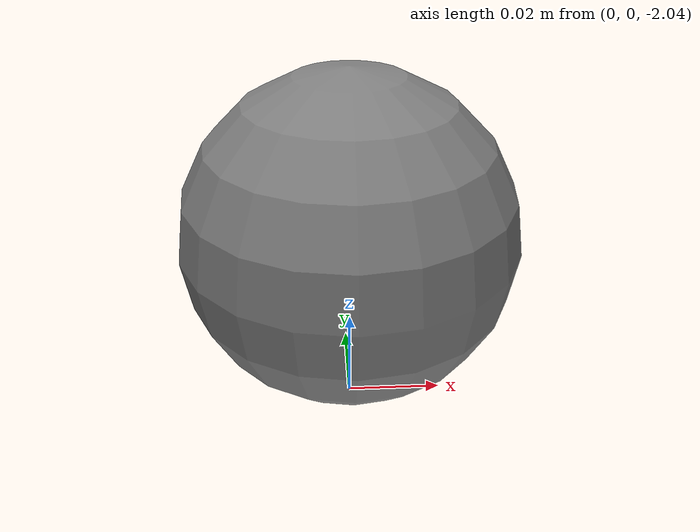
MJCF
<mujoco model="h2_untrained_actuated">
  <compiler angle="radian" meshdir="assets/"/>

  <option integrator="implicitfast" cone="elliptic"/>

  <size nkey="1"/>

  <default>
    <default class="h2">
      <site group="5" rgba="1 0 0 1"/>
      <default class="visual">
        <geom type="mesh" contype="0" conaffinity="0" group="2" density="0"/>
      </default>
      <default class="collision">
        <geom type="capsule" condim="6" group="3" priority="1"/>
        <default class="foot_capsule">
          <geom size="0.01 0 0"/>
        </default>
      </default>
    </default>
  </default>

  <worldbody>
    <geom name="floor" size="30 30 0.1" type="plane" friction="0.6" rgba="0.15 0.18 0.22 1"/>
    <body name="pelvis" childclass="h2" pos="0 0 1.03">
      <inertial pos="0.00046244 -4.214e-05 -0.0147344" quat="0.707546 0.706201 -0.0235095 -0.0102787" mass="7.60468" diaginertia="0.0355137 0.0275324 0.0228779"/>
      <joint name="floating_base_joint" type="free"/>
      <geom name="pelvis_collision" class="collision" size="0.08" type="sphere"/>
      <site name="imu" pos="0 0 0" size="0.01"/>
      <body name="left_hip_pitch_link" pos="0 0.0819279 -0.043723" quat="0.965926 -0.25882 0 0">
        <inertial pos="0.00300595 0.0593147 -0.0170915" quat="0.899485 0.435934 -0.0222136 -0.0198741" mass="2.79753" diaginertia="0.00510297 0.00410085 0.0034593"/>
        <joint name="left_hip_pitch_joint" pos="0 0 0" axis="0 1 0" range="-2.4526 2.77542" armature="0.01" damping="0.05" frictionloss="0.2"/>
        <body name="left_hip_roll_link" pos="0.018422 0.0635 -0.022095" quat="0.965926 0.25882 0 0">
          <inertial pos="-0.0302619 -0.0046893 -0.0444985" quat="-0.0935812 0.633472 -0.0477755 0.766598" mass="0.627146" diaginertia="0.00200252 0.00167509 0.00128023"/>
          <joint name="left_hip_roll_joint" pos="0 0 0" axis="1 0 0" range="-0.467441 2.16886" armature="0.01" damping="0.05" frictionloss="0.2"/>
          <geom name="left_hip_collision" class="collision" size="0.06 0.0125" pos="-0.013 0 -0.0125"/>
          <body name="left_hip_yaw_link" pos="-0.0047433 -0.0057328 -0.075875">
            <inertial pos="0.00069408 -0.0108659 -0.113015" quat="0.621993 -0.0405952 0.0198637 0.781717" mass="7.08752" diaginertia="0.0514012 0.050596 0.0130067"/>
            <joint name="left_hip_yaw_joint" pos="0 0 0" axis="0 0 1" range="-2.827 2.827" armature="0.01" damping="0.05" frictionloss="0.2"/>
            <geom name="left_thigh_collision" class="collision" size="0.05 0.100281" pos="0.0075 0 -0.15" quat="0.9993 0 -0.0374212 0"/>
            <body name="left_knee_link" pos="-0.010386 -0.0042181 -0.31742">
              <inertial pos="0.00461331 0 -0.167155" quat="0.689662 0.00325283 0.00290593 0.724118" mass="3.5534" diaginertia="0.0512388 0.0510884 0.00333998"/>
              <joint name="left_knee_joint" pos="0 0 0" axis="0 1 0" range="-0.08725 2.53025" armature="0.01" damping="0.05" frictionloss="0.2"/>
              <geom name="left_shin_collision" class="collision" size="0.03 0.0764853" pos="0.015 0 -0.125" quat="0.995133 0 0.0985376 0"/>
              <geom name="left_linkage_brace_collision" class="collision" size="0.02 0.0855862" pos="0.01 0 -0.365" quat="0.998286 0 -0.0585209 0"/>
              <body name="left_ankle_roll_link" pos="0.018383 0 -0.49662">
                <inertial pos="-0.0174063 6.424e-05 -0.0002146" quat="0.499157 0.502573 -0.497809 0.500449" mass="0.123182" diaginertia="4.00501e-05 3.43207e-05 1.44993e-05"/>
                <joint name="left_ankle_roll_joint" pos="0 0 0" axis="1 0 0" range="-0.349066 0.296706" armature="0.01" damping="0.05" frictionloss="0.2"/>
                <body name="left_ankle_pitch_link" pos="0 -0.0368 0">
                  <inertial pos="0.032059 0.0370053 -0.0288282" quat="6.19452e-05 0.72345 -3.0004e-05 0.690377" mass="0.844967" diaginertia="0.00438317 0.00410964 0.000599978"/>
                  <joint name="left_ankle_pitch_joint" pos="0 0 0" axis="0 1 0" range="-1.13446 0.610865" armature="0.01" damping="0.05" frictionloss="0.2"/>
                  <geom name="left_foot1_collision" class="foot_capsule" size="0.01 0.025" pos="0.105 0.008 -0.038" quat="0.707107 0 0.707107 0"/>
                  <geom name="left_foot2_collision" class="foot_capsule" size="0.01 0.1025" pos="0.0375 0.018 -0.038" quat="0.707107 0 -0.707107 0"/>
                  <geom name="left_foot3_collision" class="foot_capsule" size="0.01 0.1065" pos="0.0385 0.027 -0.038" quat="0.707107 0 -0.707107 0"/>
                  <geom name="left_foot4_collision" class="foot_capsule" size="0.01 0.11" pos="0.04 0.037 -0.038" quat="0.707107 0 -0.707107 0"/>
                  <geom name="left_foot5_collision" class="foot_capsule" size="0.01 0.1065" pos="0.0385 0.047 -0.038" quat="0.707107 0 -0.707107 0"/>
                  <geom name="left_foot6_collision" class="foot_capsule" size="0.01 0.1025" pos="0.0375 0.055 -0.038" quat="0.707107 0 -0.707107 0"/>
                  <geom name="left_foot7_collision" class="foot_capsule" size="0.01 0.025" pos="0.105 0.065 -0.038" quat="0.707107 0 0.707107 0"/>
                  <site name="left_foot" pos="0.04 0.037 -0.048"/>
                </body>
              </body>
            </body>
          </body>
        </body>
      </body>
      <body name="right_hip_pitch_link" pos="0 -0.0803801 -0.046403" quat="0.965926 0.25882 0 0">
        <inertial pos="0.00300595 -0.0593147 -0.0170915" quat="0.435934 0.899485 0.0198741 0.0222136" mass="2.79753" diaginertia="0.00510297 0.00410085 0.0034593"/>
        <joint name="right_hip_pitch_joint" pos="0 0 0" axis="0 1 0" range="-2.4526 2.77542" armature="0.01" damping="0.05" frictionloss="0.2"/>
        <body name="right_hip_roll_link" pos="0.037774 -0.0635 -0.019" quat="0.965926 -0.25882 0 0">
          <inertial pos="-0.0302619 0.0046893 -0.0444985" quat="0.0935812 0.633472 0.0477755 0.766598" mass="0.627146" diaginertia="0.00200252 0.00167509 0.00128023"/>
          <joint name="right_hip_roll_joint" pos="0 0 0" axis="1 0 0" range="-2.16886 0.467441" armature="0.01" damping="0.05" frictionloss="0.2"/>
          <geom name="right_hip_collision" class="collision" size="0.06 0.0125" pos="-0.033 0 -0.0125"/>
          <body name="right_hip_yaw_link" pos="-0.024111 0.0057328 -0.075875">
            <inertial pos="0.00069408 0.0108659 -0.113015" quat="0.781717 0.0198637 -0.0405952 0.621993" mass="7.08752" diaginertia="0.0514012 0.050596 0.0130067"/>
            <joint name="right_hip_yaw_joint" pos="0 0 0" axis="0 0 1" range="-2.827 2.827" armature="0.01" damping="0.05" frictionloss="0.2"/>
            <geom name="right_thigh_collision" class="collision" size="0.05 0.100281" pos="0.0075 0 -0.15" quat="0.9993 0 -0.0374212 0"/>
            <body name="right_knee_link" pos="-0.010386 0.0042181 -0.31742">
              <inertial pos="0.00461331 0 -0.167155" quat="0.724118 0.00290593 0.00325283 0.689662" mass="3.5534" diaginertia="0.0512388 0.0510884 0.00333998"/>
              <joint name="right_knee_joint" pos="0 0 0" axis="0 1 0" range="-0.08725 2.53025" armature="0.01" damping="0.05" frictionloss="0.2"/>
              <geom name="right_shin_collision" class="collision" size="0.03 0.0764853" pos="0.015 0 -0.125" quat="0.995133 0 0.0985376 0"/>
              <geom name="right_linkage_brace_collision" class="collision" size="0.02 0.0855862" pos="0.01 0 -0.365" quat="0.998286 0 -0.0585209 0"/>
              <body name="right_ankle_roll_link" pos="0.018383 0 -0.49662">
                <inertial pos="-0.0174063 -6.424e-05 -0.0002146" quat="0.502573 0.499157 -0.500449 0.497809" mass="0.123182" diaginertia="4.00501e-05 3.43207e-05 1.44993e-05"/>
                <joint name="right_ankle_roll_joint" pos="0 0 0" axis="1 0 0" range="-0.296706 0.349066" armature="0.01" damping="0.05" frictionloss="0.2"/>
                <body name="right_ankle_pitch_link" pos="0 0.0373 0">
                  <inertial pos="0.032059 -0.0370053 -0.0288282" quat="-6.19452e-05 0.72345 3.0004e-05 0.690377" mass="0.844967" diaginertia="0.00438317 0.00410964 0.000599978"/>
                  <joint name="right_ankle_pitch_joint" pos="0 0 0" axis="0 1 0" range="-1.13446 0.610865" armature="0.01" damping="0.05" frictionloss="0.2"/>
                  <geom name="right_foot1_collision" class="foot_capsule" size="0.01 0.025" pos="0.105 -0.008 -0.038" quat="0.707107 0 0.707107 0"/>
                  <geom name="right_foot2_collision" class="foot_capsule" size="0.01 0.1025" pos="0.0375 -0.018 -0.038" quat="0.707107 0 -0.707107 0"/>
                  <geom name="right_foot3_collision" class="foot_capsule" size="0.01 0.1065" pos="0.0385 -0.027 -0.038" quat="0.707107 0 -0.707107 0"/>
                  <geom name="right_foot4_collision" class="foot_capsule" size="0.01 0.11" pos="0.04 -0.037 -0.038" quat="0.707107 0 -0.707107 0"/>
                  <geom name="right_foot5_collision" class="foot_capsule" size="0.01 0.1065" pos="0.0385 -0.047 -0.038" quat="0.707107 0 -0.707107 0"/>
                  <geom name="right_foot6_collision" class="foot_capsule" size="0.01 0.1025" pos="0.0375 -0.055 -0.038" quat="0.707107 0 -0.707107 0"/>
                  <geom name="right_foot7_collision" class="foot_capsule" size="0.01 0.025" pos="0.105 -0.065 -0.038" quat="0.707107 0 0.707107 0"/>
                  <site name="right_foot" pos="0.04 -0.037 -0.048"/>
                </body>
              </body>
            </body>
          </body>
        </body>
      </body>
      <body name="waist_yaw_link" pos="0 0.0015099 0.090537">
        <inertial pos="0.00626994 0 0.0169696" quat="0 0.717728 0 0.696323" mass="0.279762" diaginertia="0.000311422 0.0002473 0.000123348"/>
        <joint name="waist_yaw_joint" pos="0 0 0" axis="0 0 1" range="-1.7453 1.7453" armature="0.01" damping="0.05" frictionloss="0.2"/>
        <body name="waist_roll_link" pos="0 -0.0015099 0.0325">
          <inertial pos="0 0.00128474 0" quat="0 0.707107 0 0.707107" mass="0.0658504" diaginertia="1.58e-05 1.041e-05 8.09e-06"/>
          <joint name="waist_roll_joint" pos="0 0 0" axis="1 0 0" range="-0.5236 0.5236" armature="0.01" damping="0.05" frictionloss="0.2"/>
          <body name="torso_link">
            <inertial pos="0.0134247 0.0054719 0.210501" quat="0.999399 -0.0341887 0.00399831 0.00403179" mass="15.8703" diaginertia="0.273064 0.244383 0.0840858"/>
            <joint name="waist_pitch_joint" pos="0 0 0" axis="0 1 0" range="-0.43633 0.5236" armature="0.01" damping="0.05" frictionloss="0.2"/>
            <geom name="torso_collision" class="collision" size="0.09 0.09" pos="0 0 0.21" quat="0 1 0 0"/>
            <body name="head_pitch_link" pos="-0.00011475 0.020709 0.42181">
              <inertial pos="5.279e-08 -0.00035318 0.045125" quat="0.999996 -0.000955249 -0.00262397 -0.000580497" mass="1.82" diaginertia="0.00538697 0.00532442 0.00140982"/>
              <body name="head_yaw_link" pos="0 -0.0189 0.1325">
                <inertial pos="0.0219 0 0.0187" quat="0.667311 -0.227767 -0.231751 0.670156" mass="1.3" diaginertia="0.00535274 0.00472336 0.00378091"/>
                <geom name="head_collision" class="collision" size="0.065" pos="0.02 0 0.02" type="sphere"/>
              </body>
            </body>
            <body name="left_shoulder_pitch_link" pos="0.0019779 0.11553 0.35792" quat="0.990959 0.134164 0 0">
              <inertial pos="0.00296153 0.0520268 -0.025045" quat="0.955852 0.29138 -0.0379121 0.00288293" mass="1.06056" diaginertia="0.00122192 0.00110581 0.000458834"/>
              <joint name="left_shoulder_pitch_joint" pos="0 0 0" axis="0 1 0" range="-2.618 1.833" armature="0.01" damping="0.05" frictionloss="0.2"/>
              <body name="left_shoulder_roll_link" pos="-0.00082158 0.060413 -0.040043" quat="0.990959 -0.134164 0 0">
                <inertial pos="0 0.00415443 -0.0629422" quat="0.678366 0.110828 0.0778018 0.722138" mass="1.34511" diaginertia="0.00210225 0.00198513 0.00105666"/>
                <joint name="left_shoulder_roll_joint" pos="0 0 0" axis="1 0 0" range="-0.517 2.494" armature="0.01" damping="0.05" frictionloss="0.2"/>
                <body name="left_shoulder_yaw_link" pos="-0.0025946 0.0038061 -0.09623">
                  <inertial pos="0.00364187 0.0186515 -0.0558555" quat="0.995617 -0.0729116 -0.0584518 -0.00371547" mass="0.915717" diaginertia="0.00306267 0.00257349 0.00143042"/>
                  <joint name="left_shoulder_yaw_joint" pos="0 0 0" axis="0 0 1" range="-2.618 2.618" armature="0.01" damping="0.05" frictionloss="0.2"/>
                  <geom name="left_shoulder_yaw_collision" class="collision" size="0.035 0.075" pos="0 0 0.015" quat="0 1 0 0"/>
                  <body name="left_elbow_link" pos="0.015424 0.020635 -0.13364">
                    <inertial pos="0.0459969 -0.0283296 -0.00661325" quat="0.520177 0.507229 0.507638 0.463074" mass="1.69432" diaginertia="0.00548751 0.00533836 0.000695052"/>
                    <joint name="left_elbow_joint" pos="0 0 0" axis="0 1 0" range="-0.986 3.071" armature="0.01" damping="0.05" frictionloss="0.2"/>
                    <geom name="left_elbow_yaw_collision" class="collision" size="0.035 0.05" pos="0.05 -0.025 -0.01" quat="0.707107 0 -0.707107 0"/>
                    <body name="left_wrist_roll_link" pos="0.13119 -0.021207 -0.013343">
                      <inertial pos="0.0337195 0.00237482 0.00031544" quat="-0.242945 0.638599 0.286806 0.671499" mass="0.969837" diaginertia="0.000926999 0.000903832 0.000852829"/>
                      <joint name="left_wrist_roll_joint" pos="0 0 0" axis="1 0 0" range="-2.618 2.618" armature="0.01" damping="0.05" frictionloss="0.2"/>
                      <body name="left_wrist_pitch_link" pos="0.080589 3.0398e-05 -0.0013317">
                        <inertial pos="0.01821 0.0314035 0.0115687" quat="0.977699 -0.037912 -0.203807 0.033629" mass="0.946953" diaginertia="0.000918192 0.00082104 0.000648419"/>
                        <joint name="left_wrist_pitch_joint" pos="0 0 0" axis="0 1 0" range="-0.576 0.576" armature="0.01" damping="0.05" frictionloss="0.2"/>
                        <geom name="left_wrist_collision" class="collision" size="0.035 0.04" pos="0.01 0 0" quat="0.707107 0 -0.707107 0"/>
                        <body name="left_wrist_yaw_link" pos="0.028225 0.00048901 0.00058318">
                          <inertial pos="-0.0101173 0.00400457 -0.0173071" quat="0.554707 0.450933 0.585065 0.382961" mass="0.605752" diaginertia="0.000778685 0.00067164 0.000238076"/>
                          <joint name="left_wrist_yaw_joint" pos="0 0 0" axis="0 0 1" range="-1.22 1.22" armature="0.01" damping="0.05" frictionloss="0.2"/>
                          <geom name="left_hand_collision" class="collision" size="0.035 0.04" pos="0.14 -0.01 0" quat="0.707107 0 -0.707107 0" rgba="0.2 0.6 0.2 0.2"/>
                          <site name="left_palm" pos="0.08 0 0" size="0.01"/>
                        </body>
                      </body>
                    </body>
                  </body>
                </body>
              </body>
            </body>
            <body name="right_shoulder_pitch_link" pos="0.0019706 -0.11185 0.35789" quat="0.990959 -0.134164 0 0">
              <inertial pos="0.00296153 -0.0520268 -0.025045" quat="0.955852 -0.291379 -0.0379149 -0.00289698" mass="1.06056" diaginertia="0.00122192 0.00110581 0.000458835"/>
              <joint name="right_shoulder_pitch_joint" pos="0 0 0" axis="0 1 0" range="-2.618 1.833" armature="0.01" damping="0.05" frictionloss="0.2"/>
              <body name="right_shoulder_roll_link" pos="-0.00082577 -0.060403 -0.040059" quat="0.990959 0.134164 0 0">
                <inertial pos="0 -0.00415443 -0.0629422" quat="0.722138 0.0778018 0.110828 0.678366" mass="1.34511" diaginertia="0.00210225 0.00198513 0.00105666"/>
                <joint name="right_shoulder_roll_joint" pos="0 0 0" axis="1 0 0" range="-2.494 0.517" armature="0.01" damping="0.05" frictionloss="0.2"/>
                <body name="right_shoulder_yaw_link" pos="-0.0025949 -0.0037808 -0.096231">
                  <inertial pos="0.00364187 -0.0186515 -0.0558555" quat="0.995617 0.0729116 -0.0584518 0.00371547" mass="0.915717" diaginertia="0.00306267 0.00257349 0.00143042"/>
                  <joint name="right_shoulder_yaw_joint" pos="0 0 0" axis="0 0 1" range="-2.618 2.618" armature="0.01" damping="0.05" frictionloss="0.2"/>
                  <geom name="right_shoulder_yaw_collision" class="collision" size="0.035 0.075" pos="0 0 0.015" quat="0 1 0 0"/>
                  <body name="right_elbow_link" pos="0.015346 -0.020599 -0.13363">
                    <inertial pos="0.0459969 0.0283296 -0.00661325" quat="0.463074 0.507638 0.507229 0.520177" mass="1.69432" diaginertia="0.00548751 0.00533836 0.000695052"/>
                    <joint name="right_elbow_joint" pos="0 0 0" axis="0 1 0" range="-0.986 3.071" armature="0.01" damping="0.05" frictionloss="0.2"/>
                    <geom name="right_elbow_yaw_collision" class="collision" size="0.035 0.05" pos="0.05 0.025 -0.01" quat="0.707107 0 -0.707107 0"/>
                    <body name="right_wrist_roll_link" pos="0.13177 0.021197 -0.013782">
                      <inertial pos="0.0337195 -0.00237482 0.00031544" quat="0.242945 0.638599 -0.286806 0.671499" mass="0.969837" diaginertia="0.000926999 0.000903832 0.000852829"/>
                      <joint name="right_wrist_roll_joint" pos="0 0 0" axis="1 0 0" range="-2.618 2.618" armature="0.01" damping="0.05" frictionloss="0.2"/>
                      <body name="right_wrist_pitch_link" pos="0.076351 -0.00015864 0.0011464">
                        <inertial pos="0.01821 -0.0314035 0.0115687" quat="0.977699 0.037912 -0.203807 -0.033629" mass="0.946953" diaginertia="0.000918192 0.00082104 0.000648419"/>
                        <joint name="right_wrist_pitch_joint" pos="0 0 0" axis="0 1 0" range="-0.576 0.576" armature="0.01" damping="0.05" frictionloss="0.2"/>
                        <geom name="right_wrist_collision" class="collision" size="0.035 0.04" pos="0.01 0 0" quat="0.707107 0 -0.707107 0"/>
                        <body name="right_wrist_yaw_link" pos="0.028195 5.8414e-05 -0.0012184">
                          <inertial pos="-0.0101173 -0.00400457 -0.0173071" quat="0.382961 0.585065 0.450933 0.554707" mass="0.605752" diaginertia="0.000778685 0.00067164 0.000238076"/>
                          <joint name="right_wrist_yaw_joint" pos="0 0 0" axis="0 0 1" range="-1.22 1.22" armature="0.01" damping="0.05" frictionloss="0.2"/>
                          <geom name="right_hand_collision" class="collision" size="0.035 0.04" pos="0.14 0.01 0" quat="0.707107 0 -0.707107 0" rgba="0.2 0.6 0.2 0.2"/>
                          <site name="right_palm" pos="0.08 0 0" size="0.01"/>
                          <body name="tennis_racket">
                            <inertial pos="0.08 -0.004 0.28" mass="0.32" diaginertia="0.014 0.014 0.003"/>
                            <geom name="racket_head" size="0.12 0.005" pos="0.1025 -0.004 0.4" quat="0 0 -0.707107 0.707107" type="cylinder" contype="4" conaffinity="4" friction="0.6 0.005 0.02" group="3" solref="0.004 0.5"/>
                            <site name="racket_center" pos="0.1025 -0.004 0.4"/>
                          </body>
                        </body>
                      </body>
                    </body>
                  </body>
                </body>
              </body>
            </body>
          </body>
        </body>
      </body>
    </body>
    <body name="ball" pos="0 0 -2">
      <joint name="ball_joint" type="free"/>
      <geom name="ball_geom" size="0.033" conaffinity="6" condim="6" priority="1" friction="0.6 0.005 0.02" solref="-98696 -57.5" solimp="0.99 0.99" mass="0.057"/>
    </body>
  </worldbody>

  <contact>
    <exclude body1="pelvis" body2="left_hip_roll_link"/>
    <exclude body1="pelvis" body2="right_hip_roll_link"/>
    <exclude body1="left_elbow_link" body2="left_wrist_pitch_link"/>
    <exclude body1="right_elbow_link" body2="right_wrist_pitch_link"/>
  </contact>

  <actuator>
    <general name="left_hip_pitch_joint_motor" joint="left_hip_pitch_joint" ctrllimited="true" ctrlrange="-2.4526 2.77542" forcerange="-360 360" biastype="affine" gainprm="200" biasprm="0 -200 -4"/>
    <general name="left_hip_roll_joint_motor" joint="left_hip_roll_joint" ctrllimited="true" ctrlrange="-0.467441 2.16886" forcerange="-360 360" biastype="affine" gainprm="200" biasprm="0 -200 -4"/>
    <general name="left_hip_yaw_joint_motor" joint="left_hip_yaw_joint" ctrllimited="true" ctrlrange="-2.827 2.827" forcerange="-360 360" biastype="affine" gainprm="200" biasprm="0 -200 -4"/>
    <general name="left_knee_joint_motor" joint="left_knee_joint" ctrllimited="true" ctrlrange="-0.08725 2.53025" forcerange="-360 360" biastype="affine" gainprm="200" biasprm="0 -200 -4"/>
    <general name="left_ankle_roll_joint_motor" joint="left_ankle_roll_joint" ctrllimited="true" ctrlrange="-0.349066 0.296706" forcerange="-19 19" biastype="affine" gainprm="40" biasprm="0 -40 -2"/>
    <general name="left_ankle_pitch_joint_motor" joint="left_ankle_pitch_joint" ctrllimited="true" ctrlrange="-1.13446 0.610865" forcerange="-66.88 66.88" biastype="affine" gainprm="40" biasprm="0 -40 -2"/>
    <general name="right_hip_pitch_joint_motor" joint="right_hip_pitch_joint" ctrllimited="true" ctrlrange="-2.4526 2.77542" forcerange="-360 360" biastype="affine" gainprm="200" biasprm="0 -200 -4"/>
    <general name="right_hip_roll_joint_motor" joint="right_hip_roll_joint" ctrllimited="true" ctrlrange="-2.16886 0.467441" forcerange="-360 360" biastype="affine" gainprm="200" biasprm="0 -200 -4"/>
    <general name="right_hip_yaw_joint_motor" joint="right_hip_yaw_joint" ctrllimited="true" ctrlrange="-2.827 2.827" forcerange="-360 360" biastype="affine" gainprm="200" biasprm="0 -200 -4"/>
    <general name="right_knee_joint_motor" joint="right_knee_joint" ctrllimited="true" ctrlrange="-0.08725 2.53025" forcerange="-360 360" biastype="affine" gainprm="200" biasprm="0 -200 -4"/>
    <general name="right_ankle_roll_joint_motor" joint="right_ankle_roll_joint" ctrllimited="true" ctrlrange="-0.296706 0.349066" forcerange="-19 19" biastype="affine" gainprm="40" biasprm="0 -40 -2"/>
    <general name="right_ankle_pitch_joint_motor" joint="right_ankle_pitch_joint" ctrllimited="true" ctrlrange="-1.13446 0.610865" forcerange="-66.88 66.88" biastype="affine" gainprm="40" biasprm="0 -40 -2"/>
    <general name="waist_yaw_joint_motor" joint="waist_yaw_joint" ctrllimited="true" ctrlrange="-1.7453 1.7453" forcerange="-120 120" biastype="affine" gainprm="150" biasprm="0 -150 -3"/>
    <general name="waist_roll_joint_motor" joint="waist_roll_joint" ctrllimited="true" ctrlrange="-0.5236 0.5236" forcerange="-180 180" biastype="affine" gainprm="150" biasprm="0 -150 -3"/>
    <general name="waist_pitch_joint_motor" joint="waist_pitch_joint" ctrllimited="true" ctrlrange="-0.43633 0.5236" forcerange="-180 180" biastype="affine" gainprm="150" biasprm="0 -150 -3"/>
    <general name="left_shoulder_pitch_joint_motor" joint="left_shoulder_pitch_joint" ctrllimited="true" ctrlrange="-2.618 1.833" forcerange="-130 130" biastype="affine" gainprm="40" biasprm="0 -40 -2"/>
    <general name="left_shoulder_roll_joint_motor" joint="left_shoulder_roll_joint" ctrllimited="true" ctrlrange="-0.517 2.494" forcerange="-60 60" biastype="affine" gainprm="40" biasprm="0 -40 -2"/>
    <general name="left_shoulder_yaw_joint_motor" joint="left_shoulder_yaw_joint" ctrllimited="true" ctrlrange="-2.618 2.618" forcerange="-60 60" biastype="affine" gainprm="40" biasprm="0 -40 -2"/>
    <general name="left_elbow_joint_motor" joint="left_elbow_joint" ctrllimited="true" ctrlrange="-0.986 3.071" forcerange="-60 60" biastype="affine" gainprm="40" biasprm="0 -40 -2"/>
    <general name="left_wrist_roll_joint_motor" joint="left_wrist_roll_joint" ctrllimited="true" ctrlrange="-2.618 2.618" forcerange="-60 60" biastype="affine" gainprm="40" biasprm="0 -40 -2"/>
    <general name="left_wrist_pitch_joint_motor" joint="left_wrist_pitch_joint" ctrllimited="true" ctrlrange="-0.576 0.576" forcerange="-10 10" biastype="affine" gainprm="20" biasprm="0 -20 -1"/>
    <general name="left_wrist_yaw_joint_motor" joint="left_wrist_yaw_joint" ctrllimited="true" ctrlrange="-1.22 1.22" forcerange="-10 10" biastype="affine" gainprm="20" biasprm="0 -20 -1"/>
    <general name="right_shoulder_pitch_joint_motor" joint="right_shoulder_pitch_joint" ctrllimited="true" ctrlrange="-2.618 1.833" forcerange="-130 130" biastype="affine" gainprm="40" biasprm="0 -40 -2"/>
    <general name="right_shoulder_roll_joint_motor" joint="right_shoulder_roll_joint" ctrllimited="true" ctrlrange="-2.494 0.517" forcerange="-60 60" biastype="affine" gainprm="40" biasprm="0 -40 -2"/>
    <general name="right_shoulder_yaw_joint_motor" joint="right_shoulder_yaw_joint" ctrllimited="true" ctrlrange="-2.618 2.618" forcerange="-60 60" biastype="affine" gainprm="40" biasprm="0 -40 -2"/>
    <general name="right_elbow_joint_motor" joint="right_elbow_joint" ctrllimited="true" ctrlrange="-0.986 3.071" forcerange="-60 60" biastype="affine" gainprm="40" biasprm="0 -40 -2"/>
    <general name="right_wrist_roll_joint_motor" joint="right_wrist_roll_joint" ctrllimited="true" ctrlrange="-2.618 2.618" forcerange="-60 60" biastype="affine" gainprm="40" biasprm="0 -40 -2"/>
    <general name="right_wrist_pitch_joint_motor" joint="right_wrist_pitch_joint" ctrllimited="true" ctrlrange="-0.576 0.576" forcerange="-10 10" biastype="affine" gainprm="20" biasprm="0 -20 -1"/>
    <general name="right_wrist_yaw_joint_motor" joint="right_wrist_yaw_joint" ctrllimited="true" ctrlrange="-1.22 1.22" forcerange="-10 10" biastype="affine" gainprm="20" biasprm="0 -20 -1"/>
  </actuator>

  <sensor>
    <gyro site="imu" name="imu_ang_vel"/>
    <velocimeter site="imu" name="imu_lin_vel"/>
    <accelerometer site="imu" name="imu_lin_acc"/>
    <subtreeangmom body="torso_link" name="root_angmom"/>
  </sensor>

  <keyframe>
    <key name="home" qpos="0 0 1.03 1 0 0 0 -0.25 0 0 0.5 0 -0.25 -0.25 0 0 0.5 0 -0.25 0 0 0 0.35 0.18 0 0.87 0 0 0 0.35 -0.18 0 0.87 0 0 0 0 0 0 0 0 0 0"/>
  </keyframe>
</mujoco>
